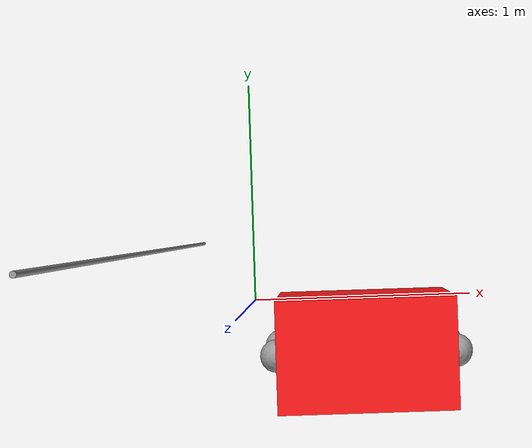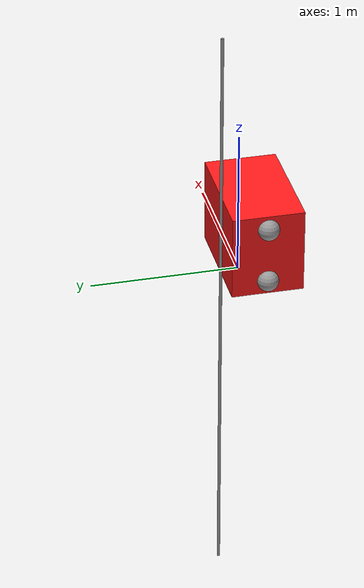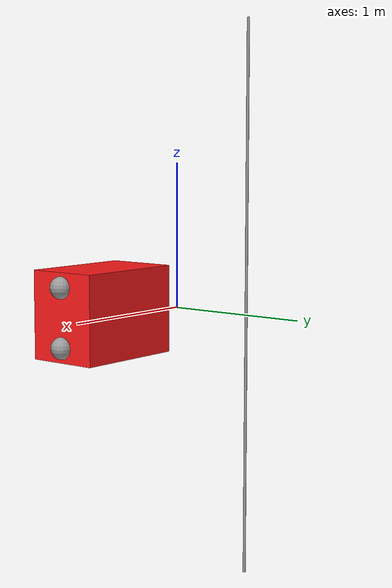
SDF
<?xml version='1.0'?>
<sdf version='1.7'>
  <model name='wallbot_cable_test'>
    <model name='Wallbot_Basic'>
      <link name='link_0'>
        <inertial>
          <mass>1</mass>
          <inertia>
            <ixx>0.166667</ixx>
            <ixy>0</ixy>
            <ixz>0</ixz>
            <iyy>0.166667</iyy>
            <iyz>0</iyz>
            <izz>0.166667</izz>
          </inertia>
          <pose>0 0 0 0 -0 0</pose>
        </inertial>
        <pose>0.015 0 0.005 0 -0 0</pose>
        <gravity>1</gravity>
        <self_collide>0</self_collide>
        <kinematic>0</kinematic>
        <enable_wind>0</enable_wind>
        <visual name='visual'>
          <pose>0 0 0 0 -0 0</pose>
          <geometry>
            <box>
              <size>0.8 0.5 0.6</size>
            </box>
          </geometry>
          <material>
            <lighting>1</lighting>
            <script>
              <uri>file://media/materials/scripts/gazebo.material</uri>
              <name>Gazebo/Grey</name>
            </script>
            <shader type='pixel'>
              <normal_map>__default__</normal_map>
            </shader>
            <ambient>1 0.1 0.1 1</ambient>
            <diffuse>0.7 0.7 0.7 1</diffuse>
            <specular>0.01 0.01 0.01 1</specular>
            <emissive>0 0 0 1</emissive>
          </material>
          <transparency>0</transparency>
          <cast_shadows>1</cast_shadows>
        </visual>
        <collision name='collision'>
          <laser_retro>0</laser_retro>
          <max_contacts>10</max_contacts>
          <pose>0 0 0 0 -0 0</pose>
          <geometry>
            <box>
              <size>0.8 0.5 0.6</size>
            </box>
          </geometry>
          <surface>
            <friction>
              <ode>
                <mu>1</mu>
                <mu2>1</mu2>
                <fdir1>0 0 0</fdir1>
                <slip1>0</slip1>
                <slip2>0</slip2>
              </ode>
              <torsional>
                <coefficient>1</coefficient>
                <patch_radius>0</patch_radius>
                <surface_radius>0</surface_radius>
                <use_patch_radius>1</use_patch_radius>
                <ode>
                  <slip>0</slip>
                </ode>
              </torsional>
            </friction>
            <bounce>
              <restitution_coefficient>0</restitution_coefficient>
              <threshold>1e+06</threshold>
            </bounce>
            <contact>
              <collide_without_contact>0</collide_without_contact>
              <collide_without_contact_bitmask>1</collide_without_contact_bitmask>
              <collide_bitmask>1</collide_bitmask>
              <ode>
                <soft_cfm>0</soft_cfm>
                <soft_erp>0.2</soft_erp>
                <kp>1e+13</kp>
                <kd>1</kd>
                <max_vel>0.01</max_vel>
                <min_depth>0</min_depth>
              </ode>
              <bullet>
                <split_impulse>1</split_impulse>
                <split_impulse_penetration_threshold>-0.01</split_impulse_penetration_threshold>
                <soft_cfm>0</soft_cfm>
                <soft_erp>0.2</soft_erp>
                <kp>1e+13</kp>
                <kd>1</kd>
              </bullet>
            </contact>
          </surface>
        </collision>
      </link>
      <link name='link_1'>
        <inertial>
          <mass>1</mass>
          <inertia>
            <ixx>0.1</ixx>
            <ixy>0</ixy>
            <ixz>0</ixz>
            <iyy>0.1</iyy>
            <iyz>0</iyz>
            <izz>0.1</izz>
          </inertia>
          <pose>0 0 0 0 -0 0</pose>
        </inertial>
        <pose>-0.385 0 0.205 0 -0 0</pose>
        <gravity>1</gravity>
        <self_collide>0</self_collide>
        <kinematic>0</kinematic>
        <enable_wind>0</enable_wind>
        <visual name='visual'>
          <pose>0 0 0 0 -0 0</pose>
          <geometry>
            <sphere>
              <radius>0.075</radius>
            </sphere>
          </geometry>
          <material>
            <lighting>1</lighting>
            <script>
              <uri>file://media/materials/scripts/gazebo.material</uri>
              <name>Gazebo/Grey</name>
            </script>
            <shader type='pixel'>
              <normal_map>__default__</normal_map>
            </shader>
            <ambient>0.3 0.3 0.3 1</ambient>
            <diffuse>0.7 0.7 0.7 1</diffuse>
            <specular>0.01 0.01 0.01 1</specular>
            <emissive>0 0 0 1</emissive>
          </material>
          <transparency>0</transparency>
          <cast_shadows>1</cast_shadows>
        </visual>
        <collision name='collision'>
          <laser_retro>0</laser_retro>
          <max_contacts>10</max_contacts>
          <pose>0 0 0 0 -0 0</pose>
          <geometry>
            <sphere>
              <radius>0.075</radius>
            </sphere>
          </geometry>
          <surface>
            <friction>
              <ode>
                <mu>1</mu>
                <mu2>1</mu2>
                <fdir1>0 0 0</fdir1>
                <slip1>0</slip1>
                <slip2>0</slip2>
              </ode>
              <torsional>
                <coefficient>1</coefficient>
                <patch_radius>0</patch_radius>
                <surface_radius>0</surface_radius>
                <use_patch_radius>1</use_patch_radius>
                <ode>
                  <slip>0</slip>
                </ode>
              </torsional>
            </friction>
            <bounce>
              <restitution_coefficient>0</restitution_coefficient>
              <threshold>1e+06</threshold>
            </bounce>
            <contact>
              <collide_without_contact>0</collide_without_contact>
              <collide_without_contact_bitmask>1</collide_without_contact_bitmask>
              <collide_bitmask>1</collide_bitmask>
              <ode>
                <soft_cfm>0</soft_cfm>
                <soft_erp>0.2</soft_erp>
                <kp>1e+13</kp>
                <kd>1</kd>
                <max_vel>0.01</max_vel>
                <min_depth>0</min_depth>
              </ode>
              <bullet>
                <split_impulse>1</split_impulse>
                <split_impulse_penetration_threshold>-0.01</split_impulse_penetration_threshold>
                <soft_cfm>0</soft_cfm>
                <soft_erp>0.2</soft_erp>
                <kp>1e+13</kp>
                <kd>1</kd>
              </bullet>
            </contact>
          </surface>
        </collision>
      </link>
      <link name='link_1_clone'>
        <inertial>
          <mass>1</mass>
          <inertia>
            <ixx>0.1</ixx>
            <ixy>0</ixy>
            <ixz>0</ixz>
            <iyy>0.1</iyy>
            <iyz>0</iyz>
            <izz>0.1</izz>
          </inertia>
          <pose>0 0 0 0 -0 0</pose>
        </inertial>
        <pose>0.415 0 0.205 0 -0 0</pose>
        <gravity>1</gravity>
        <self_collide>0</self_collide>
        <kinematic>0</kinematic>
        <enable_wind>0</enable_wind>
        <visual name='visual'>
          <pose>0 0 0 0 -0 0</pose>
          <geometry>
            <sphere>
              <radius>0.075</radius>
            </sphere>
          </geometry>
          <material>
            <lighting>1</lighting>
            <script>
              <uri>file://media/materials/scripts/gazebo.material</uri>
              <name>Gazebo/Grey</name>
            </script>
            <shader type='pixel'>
              <normal_map>__default__</normal_map>
            </shader>
            <ambient>0.3 0.3 0.3 1</ambient>
            <diffuse>0.7 0.7 0.7 1</diffuse>
            <specular>0.01 0.01 0.01 1</specular>
            <emissive>0 0 0 1</emissive>
          </material>
          <transparency>0</transparency>
          <cast_shadows>1</cast_shadows>
        </visual>
        <collision name='collision'>
          <laser_retro>0</laser_retro>
          <max_contacts>10</max_contacts>
          <pose>0 0 0 0 -0 0</pose>
          <geometry>
            <sphere>
              <radius>0.075</radius>
            </sphere>
          </geometry>
          <surface>
            <friction>
              <ode>
                <mu>1</mu>
                <mu2>1</mu2>
                <fdir1>0 0 0</fdir1>
                <slip1>0</slip1>
                <slip2>0</slip2>
              </ode>
              <torsional>
                <coefficient>1</coefficient>
                <patch_radius>0</patch_radius>
                <surface_radius>0</surface_radius>
                <use_patch_radius>1</use_patch_radius>
                <ode>
                  <slip>0</slip>
                </ode>
              </torsional>
            </friction>
            <bounce>
              <restitution_coefficient>0</restitution_coefficient>
              <threshold>1e+06</threshold>
            </bounce>
            <contact>
              <collide_without_contact>0</collide_without_contact>
              <collide_without_contact_bitmask>1</collide_without_contact_bitmask>
              <collide_bitmask>1</collide_bitmask>
              <ode>
                <soft_cfm>0</soft_cfm>
                <soft_erp>0.2</soft_erp>
                <kp>1e+13</kp>
                <kd>1</kd>
                <max_vel>0.01</max_vel>
                <min_depth>0</min_depth>
              </ode>
              <bullet>
                <split_impulse>1</split_impulse>
                <split_impulse_penetration_threshold>-0.01</split_impulse_penetration_threshold>
                <soft_cfm>0</soft_cfm>
                <soft_erp>0.2</soft_erp>
                <kp>1e+13</kp>
                <kd>1</kd>
              </bullet>
            </contact>
          </surface>
        </collision>
      </link>
      <link name='link_1_clone_0'>
        <inertial>
          <mass>1</mass>
          <inertia>
            <ixx>0.1</ixx>
            <ixy>0</ixy>
            <ixz>0</ixz>
            <iyy>0.1</iyy>
            <iyz>0</iyz>
            <izz>0.1</izz>
          </inertia>
          <pose>0 0 0 0 -0 0</pose>
        </inertial>
        <pose>0.415 0 -0.195 0 -0 0</pose>
        <gravity>1</gravity>
        <self_collide>0</self_collide>
        <kinematic>0</kinematic>
        <enable_wind>0</enable_wind>
        <visual name='visual'>
          <pose>0 0 0 0 -0 0</pose>
          <geometry>
            <sphere>
              <radius>0.075</radius>
            </sphere>
          </geometry>
          <material>
            <lighting>1</lighting>
            <script>
              <uri>file://media/materials/scripts/gazebo.material</uri>
              <name>Gazebo/Grey</name>
            </script>
            <shader type='pixel'>
              <normal_map>__default__</normal_map>
            </shader>
            <ambient>0.3 0.3 0.3 1</ambient>
            <diffuse>0.7 0.7 0.7 1</diffuse>
            <specular>0.01 0.01 0.01 1</specular>
            <emissive>0 0 0 1</emissive>
          </material>
          <transparency>0</transparency>
          <cast_shadows>1</cast_shadows>
        </visual>
        <collision name='collision'>
          <laser_retro>0</laser_retro>
          <max_contacts>10</max_contacts>
          <pose>0 0 0 0 -0 0</pose>
          <geometry>
            <sphere>
              <radius>0.075</radius>
            </sphere>
          </geometry>
          <surface>
            <friction>
              <ode>
                <mu>1</mu>
                <mu2>1</mu2>
                <fdir1>0 0 0</fdir1>
                <slip1>0</slip1>
                <slip2>0</slip2>
              </ode>
              <torsional>
                <coefficient>1</coefficient>
                <patch_radius>0</patch_radius>
                <surface_radius>0</surface_radius>
                <use_patch_radius>1</use_patch_radius>
                <ode>
                  <slip>0</slip>
                </ode>
              </torsional>
            </friction>
            <bounce>
              <restitution_coefficient>0</restitution_coefficient>
              <threshold>1e+06</threshold>
            </bounce>
            <contact>
              <collide_without_contact>0</collide_without_contact>
              <collide_without_contact_bitmask>1</collide_without_contact_bitmask>
              <collide_bitmask>1</collide_bitmask>
              <ode>
                <soft_cfm>0</soft_cfm>
                <soft_erp>0.2</soft_erp>
                <kp>1e+13</kp>
                <kd>1</kd>
                <max_vel>0.01</max_vel>
                <min_depth>0</min_depth>
              </ode>
              <bullet>
                <split_impulse>1</split_impulse>
                <split_impulse_penetration_threshold>-0.01</split_impulse_penetration_threshold>
                <soft_cfm>0</soft_cfm>
                <soft_erp>0.2</soft_erp>
                <kp>1e+13</kp>
                <kd>1</kd>
              </bullet>
            </contact>
          </surface>
        </collision>
      </link>
      <link name='link_1_clone_1'>
        <inertial>
          <mass>1</mass>
          <inertia>
            <ixx>0.1</ixx>
            <ixy>0</ixy>
            <ixz>0</ixz>
            <iyy>0.1</iyy>
            <iyz>0</iyz>
            <izz>0.1</izz>
          </inertia>
          <pose>0 0 0 0 -0 0</pose>
        </inertial>
        <pose>-0.385 0 -0.195 0 -0 0</pose>
        <gravity>1</gravity>
        <self_collide>0</self_collide>
        <kinematic>0</kinematic>
        <enable_wind>0</enable_wind>
        <visual name='visual'>
          <pose>0 0 0 0 -0 0</pose>
          <geometry>
            <sphere>
              <radius>0.075</radius>
            </sphere>
          </geometry>
          <material>
            <lighting>1</lighting>
            <script>
              <uri>file://media/materials/scripts/gazebo.material</uri>
              <name>Gazebo/Grey</name>
            </script>
            <shader type='pixel'>
              <normal_map>__default__</normal_map>
            </shader>
            <ambient>0.3 0.3 0.3 1</ambient>
            <diffuse>0.7 0.7 0.7 1</diffuse>
            <specular>0.01 0.01 0.01 1</specular>
            <emissive>0 0 0 1</emissive>
          </material>
          <transparency>0</transparency>
          <cast_shadows>1</cast_shadows>
        </visual>
        <collision name='collision'>
          <laser_retro>0</laser_retro>
          <max_contacts>10</max_contacts>
          <pose>0 0 0 0 -0 0</pose>
          <geometry>
            <sphere>
              <radius>0.075</radius>
            </sphere>
          </geometry>
          <surface>
            <friction>
              <ode>
                <mu>1</mu>
                <mu2>1</mu2>
                <fdir1>0 0 0</fdir1>
                <slip1>0</slip1>
                <slip2>0</slip2>
              </ode>
              <torsional>
                <coefficient>1</coefficient>
                <patch_radius>0</patch_radius>
                <surface_radius>0</surface_radius>
                <use_patch_radius>1</use_patch_radius>
                <ode>
                  <slip>0</slip>
                </ode>
              </torsional>
            </friction>
            <bounce>
              <restitution_coefficient>0</restitution_coefficient>
              <threshold>1e+06</threshold>
            </bounce>
            <contact>
              <collide_without_contact>0</collide_without_contact>
              <collide_without_contact_bitmask>1</collide_without_contact_bitmask>
              <collide_bitmask>1</collide_bitmask>
              <ode>
                <soft_cfm>0</soft_cfm>
                <soft_erp>0.2</soft_erp>
                <kp>1e+13</kp>
                <kd>1</kd>
                <max_vel>0.01</max_vel>
                <min_depth>0</min_depth>
              </ode>
              <bullet>
                <split_impulse>1</split_impulse>
                <split_impulse_penetration_threshold>-0.01</split_impulse_penetration_threshold>
                <soft_cfm>0</soft_cfm>
                <soft_erp>0.2</soft_erp>
                <kp>1e+13</kp>
                <kd>1</kd>
              </bullet>
            </contact>
          </surface>
        </collision>
      </link>
      <joint name='link_0_JOINT_0' type='fixed'>
        <parent>link_0</parent>
        <child>link_1</child>
        <pose>0 0 0 0 -0 0</pose>
        <physics>
          <ode>
            <limit>
              <cfm>0</cfm>
              <erp>0.2</erp>
            </limit>
            <suspension>
              <cfm>0</cfm>
              <erp>0.2</erp>
            </suspension>
          </ode>
        </physics>
      </joint>
      <joint name='link_0_JOINT_1' type='fixed'>
        <parent>link_0</parent>
        <child>link_1_clone_1</child>
        <pose>0 0 0 0 -0 0</pose>
        <physics>
          <ode>
            <limit>
              <cfm>0</cfm>
              <erp>0.2</erp>
            </limit>
            <suspension>
              <cfm>0</cfm>
              <erp>0.2</erp>
            </suspension>
          </ode>
        </physics>
      </joint>
      <joint name='link_0_JOINT_2' type='fixed'>
        <parent>link_0</parent>
        <child>link_1_clone</child>
        <pose>0 0 0 0 -0 0</pose>
        <physics>
          <ode>
            <limit>
              <cfm>0</cfm>
              <erp>0.2</erp>
            </limit>
            <suspension>
              <cfm>0</cfm>
              <erp>0.2</erp>
            </suspension>
          </ode>
        </physics>
      </joint>
      <joint name='link_0_JOINT_3' type='fixed'>
        <parent>link_0</parent>
        <child>link_1_clone_0</child>
        <pose>0 0 0 0 -0 0</pose>
        <physics>
          <ode>
            <limit>
              <cfm>0</cfm>
              <erp>0.2</erp>
            </limit>
            <suspension>
              <cfm>0</cfm>
              <erp>0.2</erp>
            </suspension>
          </ode>
        </physics>
      </joint>
      <static>0</static>
      <allow_auto_disable>1</allow_auto_disable>
      <pose>0.488228 -0.237656 0 0 -0 0</pose>
    </model>
    <model name='cable_demo'>
      <link name='link'>
        <inertial>
          <mass>1</mass>
          <inertia>
            <ixx>0.145833</ixx>
            <ixy>0</ixy>
            <ixz>0</ixz>
            <iyy>0.145833</iyy>
            <iyz>0</iyz>
            <izz>0.125</izz>
          </inertia>
          <pose>0 0 0 0 -0 0</pose>
        </inertial>
        <self_collide>0</self_collide>
        <enable_wind>0</enable_wind>
        <kinematic>0</kinematic>
        <pose>0 0 0 0 -0 0</pose>
        <gravity>1</gravity>
        <visual name='visual'>
          <geometry>
            <cylinder>
              <radius>0.01</radius>
              <length>4</length>
            </cylinder>
          </geometry>
          <material>
            <script>
              <name>Gazebo/Grey</name>
              <uri>file://media/materials/scripts/gazebo.material</uri>
            </script>
            <shader type='pixel'>
              <normal_map>__default__</normal_map>
            </shader>
            <ambient>0 0 0 1</ambient>
            <diffuse>0.7 0.7 0.7 1</diffuse>
            <specular>0.01 0.01 0.01 1</specular>
            <emissive>0 0 0 1</emissive>
          </material>
          <pose>0 0 0 0 -0 0</pose>
          <transparency>0</transparency>
          <cast_shadows>1</cast_shadows>
        </visual>
        <collision name='collision'>
          <laser_retro>0</laser_retro>
          <max_contacts>10</max_contacts>
          <pose>0 0 0 0 -0 0</pose>
          <geometry>
            <cylinder>
              <radius>0.01</radius>
              <length>4</length>
            </cylinder>
          </geometry>
          <surface>
            <friction>
              <ode>
                <mu>1</mu>
                <mu2>1</mu2>
                <fdir1>0 0 0</fdir1>
                <slip1>0</slip1>
                <slip2>0</slip2>
              </ode>
              <torsional>
                <coefficient>1</coefficient>
                <patch_radius>0</patch_radius>
                <surface_radius>0</surface_radius>
                <use_patch_radius>1</use_patch_radius>
                <ode>
                  <slip>0</slip>
                </ode>
              </torsional>
            </friction>
            <bounce>
              <restitution_coefficient>0</restitution_coefficient>
              <threshold>1e+06</threshold>
            </bounce>
            <contact>
              <collide_without_contact>0</collide_without_contact>
              <collide_without_contact_bitmask>1</collide_without_contact_bitmask>
              <collide_bitmask>1</collide_bitmask>
              <ode>
                <soft_cfm>0</soft_cfm>
                <soft_erp>0.2</soft_erp>
                <kp>1e+13</kp>
                <kd>1</kd>
                <max_vel>0.01</max_vel>
                <min_depth>0</min_depth>
              </ode>
              <bullet>
                <split_impulse>1</split_impulse>
                <split_impulse_penetration_threshold>-0.01</split_impulse_penetration_threshold>
                <soft_cfm>0</soft_cfm>
                <soft_erp>0.2</soft_erp>
                <kp>1e+13</kp>
                <kd>1</kd>
              </bullet>
            </contact>
          </surface>
        </collision>
      </link>
      <static>0</static>
      <allow_auto_disable>1</allow_auto_disable>
      <pose>-0.488228 0.237656 0 0 -0 0</pose>
    </model>
    <joint name='link_1_JOINT_0' type='ball'>
      <parent>Wallbot_Basic::link_1</parent>
      <child>cable_demo::link</child>
      <pose>-0 0 -2 0 -0 0</pose>
      <physics>
        <ode>
          <limit>
            <cfm>0</cfm>
            <erp>0.2</erp>
          </limit>
          <suspension>
            <cfm>0</cfm>
            <erp>0.2</erp>
          </suspension>
        </ode>
      </physics>
    </joint>
    <static>0</static>
    <allow_auto_disable>1</allow_auto_disable>
  </model>
</sdf>
